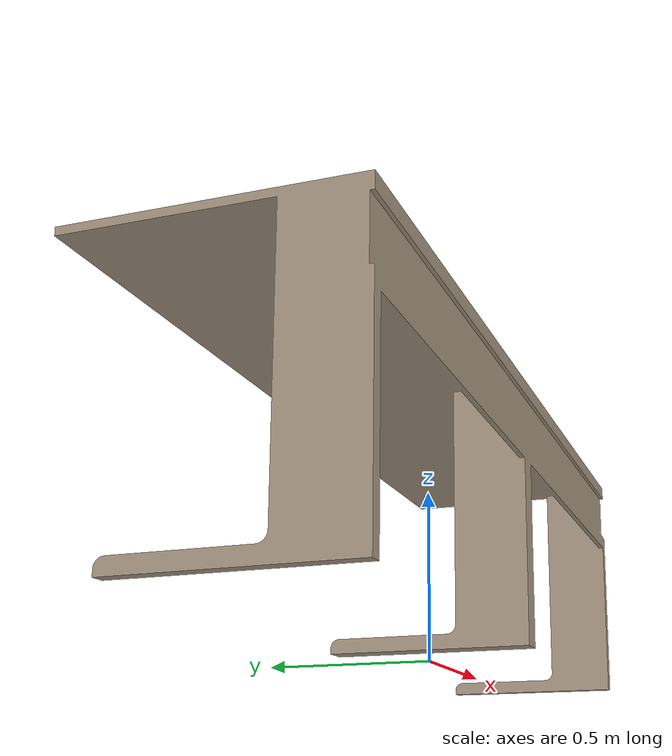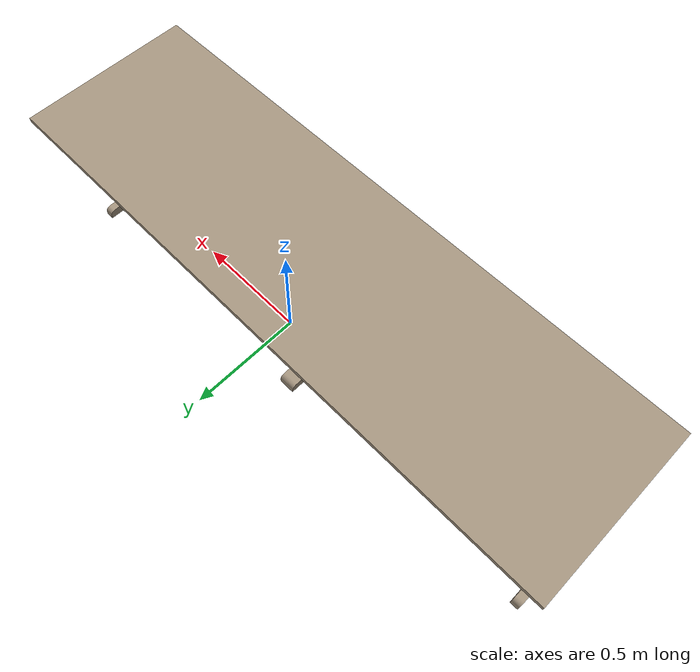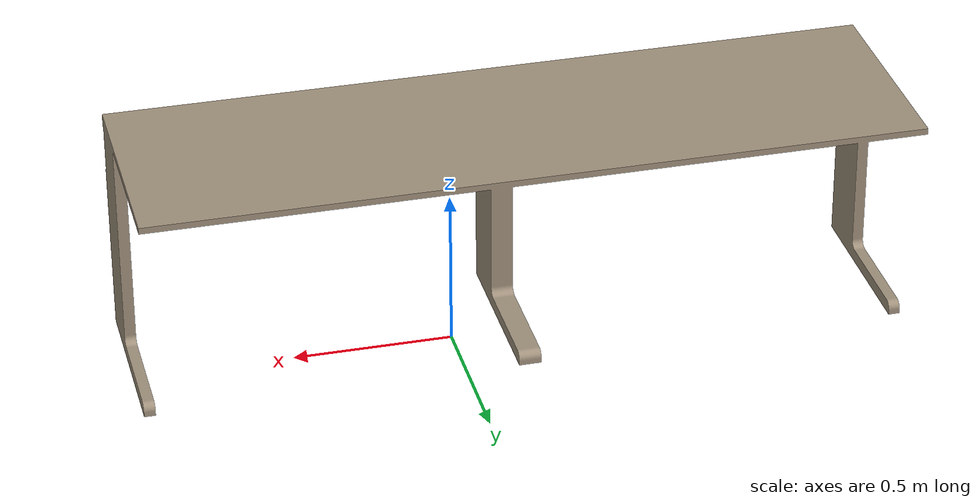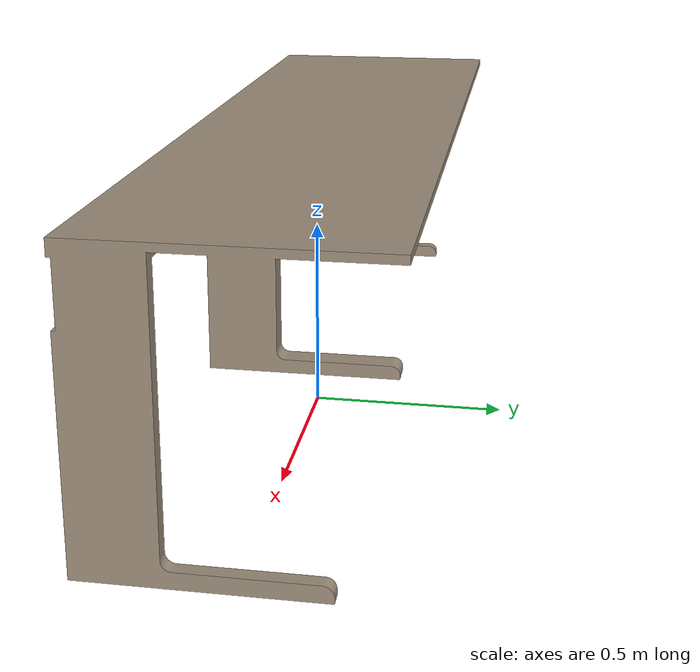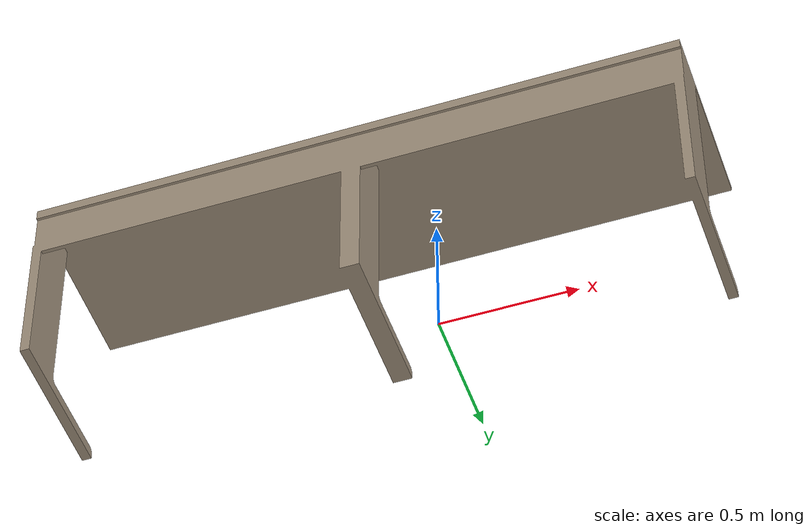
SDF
<?xml version="1.0"?>
<sdf version="1.9">
  <model name="lab_table_240cm">
    <static>true</static>
    <link name="lab_table_240cm_link">
      <visual name="lab_table_240cm_visual">
        <pose>-1.4 -0.35 0.72 0 0 0</pose>
        <geometry>
          <mesh>
            <uri>model://lab_table_240cm/meshes/table_240cm.stl</uri>
          </mesh>
        </geometry>
        <material>
          <ambient>0.62 0.56 0.48 1.0</ambient>
          <diffuse>0.62 0.56 0.48 1.0</diffuse>
          <specular>0.12 0.12 0.12 1.0</specular>
          <emissive>0.0 0.0 0.0 0.0</emissive>
        </material>
      </visual>
      <collision name="lab_table_240cm_collision">
        <pose>-1.4 -0.35 0.72 0 0 0</pose>
        <geometry>
          <mesh>
            <uri>model://lab_table_240cm/meshes/table_240cm.stl</uri>
          </mesh>
        </geometry>
      </collision>
    </link>
  </model>
</sdf>
